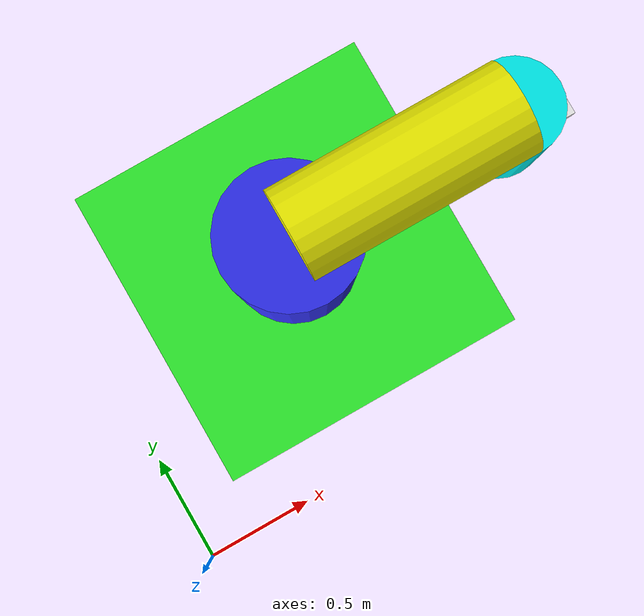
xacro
<?xml version="1.0"?>
<robot xmlns:xacro="http://www.ros.org/wiki/xacro"  name="robot">

<!--
EL4126 Robotika (K01) 2023
Nama : Bostang Palaguna
NIM : 13220055
Robot : PUMA 500 robot (model)
-->

<!-- Deskripsi Properti robot -->
<xacro:property name="base_plate_link_mass" value="12" />
<xacro:property name="base_plate_link_height" value="0.05" />  <!-- tinggi-->
<xacro:property name="base_plate_link_width" value="1.5" /> <!-- panjang -->
<xacro:property name="base_plate_link_depth" value="1.5" /> <!-- lebar -->
<xacro:property name="base_mass" value="5" />
<xacro:property name="base_length" value="1" />
<xacro:property name="base_radius" value="0.3" />
<xacro:property name="base_joint_offset_x" value="1.0" />
<xacro:property name="base_joint_offset_y" value="1.0" />
<xacro:property name="waist_length" value="1" />
<xacro:property name="waist_radius" value="0.2" />
<xacro:property name="waist_mass" value="3" />
<xacro:property name="shoulder_length" value="0.5" />
<xacro:property name="shoulder_radius" value="0.2" />
<xacro:property name="shoulder_mass" value="3" />
<xacro:property name="arm_radius" value="0.1" />
<xacro:property name="arm_length" value="0.3" />
<xacro:property name="arm_radius" value="0.1" />

    <!-- include semua konten pada example_include.xacro -->
    <xacro:include filename="example_include.xacro" />

    <!-- This first link called "world" is empty -->
    <link name="world"></link>

    <!-- A simple fixed joint dari empty world link ke base -->
    <!-- The base origin sengaja diberi offset dari  world origin. -->
    <joint name="base_plate_joint" type="fixed">
        <origin xyz="${base_joint_offset_x} ${base_joint_offset_y} 0" rpy="0 0 0"/>
        <parent link="world"/>
        <child link="base_plate_link"/>
    </joint>

        <!-- base_plate_link berupa pelat tipis persegi panjang lebar.-->

        <!-- Catatan: -->
        <!-- - visual origin Z diatur half the box height, so that the link origin sits at the bottom of the box -->
        <!-- - collision diatur identik dengan visual -->
        <!-- - inertial parameters diatur secara manual -->
    <link name="base_plate_link">

        <!-- Visual property base link -->
        <visual>
            <origin xyz="0 0 0" rpy="0 0 0"/>
            <geometry>
            <box size="${base_plate_link_width} ${base_plate_link_depth} ${base_plate_link_height}" />
            </geometry>
            <material name="green">
                <color rgba="0.2 1 0.2 1"/>
            </material>
        </visual>
        <!-- Collision property base link -->
        <collision>
            <origin xyz="0 0 0" rpy="0 0 0"/>
            <geometry>
            <box size="${base_plate_link_width} ${base_plate_link_depth} ${base_plate_link_height}" />
            </geometry>
        </collision>
        <!-- Momen inersia base link -->
        <xacro:inertial_box mass="${base_plate_link_mass}" x="${base_plate_link_width}" y="${base_plate_link_depth}" z="${base_plate_link_height}">
            <origin xyz="0 0 0" rpy="0 0 0"/>
        </xacro:inertial_box>
    </link>

    <joint name="base_joint" type="revolute">
        <origin xyz="0 0 0" rpy="0 0 0"/>
        <parent link="base_plate_link"/>
        <child link="base_link"/>
        <axis xyz="0 0 1"/>
        <limit lower="0" upper="${2*pi}" velocity="100" effort="100"/>
    </joint>

    <link name="base_link">
        <visual>
            <origin xyz="0 0 ${base_length/2+base_plate_link_height}" rpy="0 0 0"/>
            <geometry>
                <cylinder length="${base_length}" radius="${base_radius}" />
            </geometry>
            <material name="blue" />
        </visual>
        <collision>
            <origin xyz="0 0 ${base_length/2+base_plate_link_height}" rpy="0 0 0"/>
            <geometry>
                <cylinder length="${base_length}" radius="${base_radius}" />
            </geometry>
        </collision>
        <xacro:inertial_cylinder mass="${base_mass}" length="${base_length}" radius="${base_radius}">
            <origin xyz="0 0 ${base_length/2+base_plate_link_height}" rpy="0 0 0"/>
        </xacro:inertial_cylinder>
    </link>

    <joint name="waist_joint" type="revolute">
        <origin xyz="0 0 ${base_length+base_plate_link_height}" rpy="0 0 0"/>
        <parent link="base_link"/>
        <child link="waist_link"/>
        <axis xyz="1 0 0"/>
        <limit lower="0" upper="${3*pi/2}" velocity="100" effort="100"/>
    </joint>

    <link name="waist_link">
        <visual>
            <origin xyz="${waist_length/2} 0 0" rpy="0 ${pi/2} 0"/>
            <geometry>
                <cylinder length="${waist_length}" radius="${waist_radius}" />
            </geometry>
            <material name="yellow" />
        </visual>
        <collision>
            <origin xyz="${waist_length/2} 0 0" rpy="0 ${pi/2} 0"/>
            <geometry>
                <cylinder length="${waist_length}" radius="${waist_radius}" />
            </geometry>
        </collision>
        <xacro:inertial_cylinder mass="${waist_mass}" length="${waist_length}" radius="${waist_radius}">
            <origin xyz="${waist_length/2} 0 0" rpy="0 ${pi/2} 0"/>
        </xacro:inertial_cylinder>
    </link>

    <joint name="shoulder_joint" type="revolute">
        <origin xyz="${waist_length} 0 0" rpy="0 ${pi/2} 0"/>
        <parent link="waist_link"/>
        <child link="shoulder_link"/>
        <axis xyz="0 0 1"/>
        <limit lower="0" upper="${pi}" velocity="100" effort="100"/>
    </joint>

    <link name="shoulder_link">
        <visual>
            <origin xyz="${shoulder_length/2} 0 0" rpy="0 ${pi/2} 0"/>
            <geometry>
                <cylinder length="${shoulder_length}" radius="${shoulder_radius}" />
            </geometry>
            <material name="cyan" />
        </visual>
        <collision>
            <origin xyz="${shoulder_length/2} 0 0" rpy="0 ${pi/2} 0"/>
            <geometry>
                <cylinder length="${shoulder_length}" radius="${shoulder_radius}" />
            </geometry>
        </collision>
        <xacro:inertial_cylinder mass="${shoulder_mass}" length="${shoulder_length}" radius="${shoulder_radius}">
            <origin xyz="${shoulder_length/2} 0 0" rpy="0 ${pi/2} 0"/>
        </xacro:inertial_cylinder>
    </link>

    <joint name="arm_joint" type="revolute">
        <origin xyz="${shoulder_length} 0 0.15" rpy="0 0 0"/>
        <parent link="shoulder_link"/>
        <child link="arm_link"/>
        <axis xyz="0 0 1"/>
        <limit lower="0" upper="${pi/2}" velocity="100" effort="100"/>
    </joint>

    <link name="arm_link">
        <visual>
            <origin xyz="${arm_length/2} 0 0" rpy="0 ${pi/2} 0"/>
            <geometry>
                <cylinder length="${arm_length}" radius="${arm_radius}" />
            </geometry>
            <material name="orange" />
        </visual>
        <collision>
            <origin xyz="${arm_length/2} 0 0" rpy="0 ${pi/2} 0"/>
            <geometry>
                <cylinder length="${arm_length}" radius="${arm_radius}" />
            </geometry>
        </collision>
        <xacro:inertial_cylinder mass="1.0" length="${arm_length}" radius="${arm_radius}">
            <origin xyz="${arm_length/2} 0 0" rpy="0 ${pi/2} 0"/>
        </xacro:inertial_cylinder>
    </link>

    <!-- camera_joint menggambarkan posisi relatif camera terhadap arm -->
    <joint name="camera_joint" type="fixed">
        <origin xyz="${arm_length} 0 ${arm_radius + 0.075}" rpy="0 0 0"/>
        <parent link="arm_link"/>
        <child link="camera_link"/>
    </joint>

    <link name="camera_link">
        <visual>
            <origin xyz="-0.03 0 0" rpy="0 0 0"/>
            <geometry>
                <box size="0.06 0.15 0.15" />
            </geometry>
            <material name="white" />
        </visual>
        <visual>
            <origin xyz="0.03 0 0" rpy="0 ${pi/2} 0"/>
            <geometry>
                <cylinder length="0.06" radius="0.04" />
            </geometry>
            <material name="blue" />
        </visual>
        <collision>
            <origin xyz="0.0 0 0" rpy="0 0 0"/>
            <geometry>
                <box size="0.12 0.15 0.15" />
            </geometry>
        </collision>
        <xacro:inertial_box mass="0.1" x="0.12" y="0.15" z="0.15">
            <origin xyz="0.0 0 0" rpy="0 0 0"/>
        </xacro:inertial_box>
    </link>

    <xacro:include filename="example_gazebo.xacro" />

</robot>

<!-- Referensi: -->
<!-- https://en.wikipedia.org/wiki/List_of_moments_of_inertia#List_of_3D_inertia_tensors -->
<!-- http://rutherford-robotics.com/PUMA/ -->
<!-- https://articulatedrobotics.xyz/ready-for-ros-7-urdf/ -->
<!-- https://articulatedrobotics.xyz/ready-for-ros-8-gazebo/ -->

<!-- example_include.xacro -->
<robot xmlns:xacro="http://www.ros.org/wiki/xacro" >

<!--
EL4126 Robotika (K01) 2023
Nama : Bostang Palaguna
NIM : 13220055
Robot : PUMA 500 robot (model)
-->
    <!-- Specify some colours -->

    <material name="white">
        <color rgba="1 1 1 1"/>
    </material>

    <material name="orange">
        <color rgba="1 0.3 0.1 1"/>
    </material>

    <material name="yellow">
        <color rgba="1.0 1.0 0.0 1.0"/> <!-- Yellow color -->
    </material>

    <material name="cyan">
        <color rgba="0.0 1.0 1.0 1.0"/> <!-- Cyan color -->
    </material>

    <material name="blue">
        <color rgba="0.2 0.2 1 1"/>
    </material>

    <!-- Specify some standard inertial calculations https://en.wikipedia.org/wiki/List_of_moments_of_inertia -->
    <!-- These make use of xacro's mathematical functionality -->

    <xacro:macro name="inertial_sphere" params="mass radius *origin">
        <inertial>
            <xacro:insert_block name="origin"/>
            <mass value="${mass}" />
            <inertia ixx="${(2/5) * mass * (radius*radius)}" ixy="0.0" ixz="0.0"
                    iyy="${(2/5) * mass * (radius*radius)}" iyz="0.0"
                    izz="${(2/5) * mass * (radius*radius)}" />
        </inertial>
    </xacro:macro>

<!-- Mendeskripsikan momen inersia dari sebuah box -->
    <xacro:macro name="inertial_box" params="mass x y z *origin">
        <inertial>
            <xacro:insert_block name="origin"/>
            <mass value="${mass}" />
            <inertia ixx="${(1/12) * mass * (y*y+z*z)}" ixy="0.0" ixz="0.0"
                    iyy="${(1/12) * mass * (x*x+z*z)}" iyz="0.0"
                    izz="${(1/12) * mass * (x*x+y*y)}" />
        </inertial>
    </xacro:macro>

<!-- Mendeskripsikan momen inersia dari sebuah silinder yang diputar terhadap sumbu z-->
    <xacro:macro name="inertial_cylinder" params="mass length radius *origin">
        <inertial>
            <xacro:insert_block name="origin"/>
            <mass value="${mass}" />
            <inertia ixx="${(1/12) * mass * (3*radius*radius + length*length)}" ixy="0.0" ixz="0.0"
                    iyy="${(1/12) * mass * (3*radius*radius + length*length)}" iyz="0.0"
                    izz="${(1/2) * mass * (radius*radius)}" />
        </inertial>
    </xacro:macro>

</robot>

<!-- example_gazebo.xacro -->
<robot xmlns:xacro="http://www.ros.org/wiki/xacro">

    <!-- To include it add the following line -->

    <!-- Instead, we need to add gazebo tags for our links that refer to Gazebo materials -->

    <gazebo reference="base_link">
        <material>Gazebo/Green</material>
    </gazebo>

    <gazebo reference="waist_link">
        <material>Gazebo/Blue</material>
    </gazebo>

    <gazebo reference="arm_link">
        <material>Gazebo/Orange</material>
    </gazebo>

    <gazebo reference="shoulder_link">
        <material>Gazebo/Red</material>
    </gazebo>

    <!-- Gazebo requires the use of plugins to interact with other systems such as ROS. -->

    <!-- This plugin will publish the joint_states for the selected joints
            (which robot_state_publisher can then use to broadcast the approprate tf). -->

    <gazebo>
        <plugin name="gazebo_ros_joint_state_publisher"
            filename="libgazebo_ros_joint_state_publisher.so">
            <update_rate>20</update_rate>
            <joint_name>base_joint</joint_name>
            <joint_name>arm_joint</joint_name>
            <joint_name>waist_joint</joint_name>
            <joint_name>shoulder_joint</joint_name>
        </plugin>
    </gazebo>

    <!-- This plugin will read a JointTrajectory message from the /set_joint_trajectory topic
            and move the machine accordingly. It's a bit clunky but it works. -->
    <gazebo>
        <plugin name="gazebo_ros_joint_pose_trajectory"
            filename="libgazebo_ros_joint_pose_trajectory.so">
            <update_rate>2</update_rate>
        </plugin>
    </gazebo>

    <!-- The next section shows an example of adding a sensor, in this case a depth camera. -->

    <!-- First, create the link and joint for the optical frame -->

    <joint name="camera_optical_joint" type="fixed">
        <origin xyz="0 0 0" rpy="-1.571 0 -1.571" />
        <parent link="camera_link" />
        <child link="camera_link_optical" />
    </joint>

    <link name="camera_link_optical"></link>

    <!-- Add a gazebo tag for the ORIGINAL camera_link (but in the plugin we reference the optical frame so that ROS can orient things correctly) -->
    <!-- Note that although visualise is set to true, it won't actually visualise the depth camera in gazebo. To see the preview,
            try swapping "depth" to "camera"-->
    <gazebo reference="camera_link">
        <sensor type="depth" name="my_camera">
            <update_rate>20</update_rate>
            <visualize>true</visualize>
            <camera name="cam">
                <horizontal_fov>1.3962634</horizontal_fov>
                <image>
                    <width>640</width>
                    <height>480</height>
                    <format>R8B8G8</format>
                </image>
                <clip>
                    <near>0.02</near>
                    <far>300</far>
                </clip>
                <noise>
                    <type>gaussian</type>
                    <mean>0.0</mean>
                    <stddev>0.007</stddev>
                </noise>
            </camera>
            <plugin name="camera_controller" filename="libgazebo_ros_camera.so">
                <frame_name>camera_link_optical</frame_name>
                <min_depth>0.1</min_depth>
                <max_depth>500</max_depth>
            </plugin>
        </sensor>
    </gazebo>

</robot>
